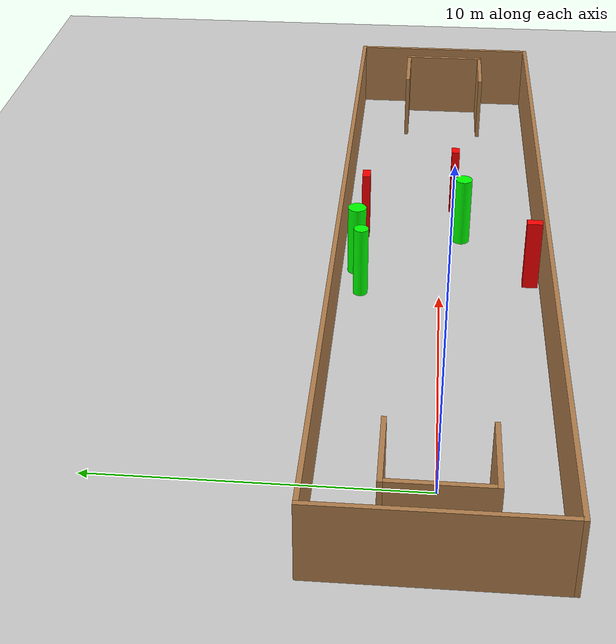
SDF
<sdf version="1.7">
 <world name="default">
  <light name="sun" type="directional">
   <pose>0 0 10 0 -0 0</pose>
   <diffuse>0.8 0.8 0.8 1</diffuse>
   <specular>0.2 0.2 0.2 1</specular>
   <attenuation>
    <range>1000</range>
    <constant>0.9</constant>
    <linear>0.01</linear>
    <quadratic>0.001</quadratic>
   </attenuation>
   <direction>-0.5 0.1 -0.9</direction>
   <spot><inner_angle>0</inner_angle><outer_angle>0</outer_angle><falloff>0</falloff></spot>
  </light>
  <model name="ground_plane">
   <static>1</static>
   <link name="link">
    <collision name="collision">
     <geometry><plane><normal>0 0 1</normal><size>100 100</size></plane></geometry>
     <surface>
      <contact><collide_bitmask>65535</collide_bitmask></contact>
      <friction><ode><mu>100</mu><mu2>50</mu2></ode></friction>
     </surface>
    </collision>
    <visual name="visual">
     <cast_shadows>0</cast_shadows>
     <geometry><plane><normal>0 0 1</normal><size>100 100</size></plane></geometry>
     <material>
      <script><uri>file://media/materials/scripts/gazebo.material</uri><name>Gazebo/Grey</name></script>
     </material>
    </visual>
   </link>
  </model>
  <gravity>0 0 -9.8</gravity>
  <magnetic_field>6e-06 2.3e-05 -4.2e-05</magnetic_field>
  <atmosphere type="adiabatic"/>
  <physics type="ode">
   <max_step_size>0.001</max_step_size>
   <real_time_factor>1</real_time_factor>
   <real_time_update_rate>1000</real_time_update_rate>
  </physics>
  <scene><ambient>0.4 0.4 0.4 1</ambient><background>0.7 0.7 0.7 1</background><shadows>1</shadows></scene>
  <spherical_coordinates>
   <surface_model>EARTH_WGS84</surface_model>
   <latitude_deg>0</latitude_deg>
   <longitude_deg>0</longitude_deg>
   <elevation>0</elevation>
   <heading_deg>0</heading_deg>
  </spherical_coordinates>
  <model name="my_base_walls">
   <link name="Wall_0">
    <collision name="Wall_0_Collision">
     <geometry><box><size>7.15 0.15 2.5</size></box></geometry>
     <pose>0 0 1.25 0 -0 0</pose>
    </collision>
    <visual name="Wall_0_Visual">
     <pose>0 0 1.25 0 -0 0</pose>
     <geometry><box><size>7.15 0.15 2.5</size></box></geometry>
     <material>
      <script><uri>file://media/materials/scripts/gazebo.material</uri><name>Gazebo/Wood</name></script>
      <ambient>1 1 1 1</ambient>
     </material>
     <meta><layer>0</layer></meta>
    </visual>
    <pose>-15 0 0 0 -0 1.5708</pose>
   </link>
   <link name="Wall_10">
    <collision name="Wall_10_Collision">
     <geometry><box><size>2.65 0.15 2.5</size></box></geometry>
     <pose>0 0 1.25 0 -0 0</pose>
    </collision>
    <visual name="Wall_10_Visual">
     <pose>0 0 1.25 0 -0 0</pose>
     <geometry><box><size>2.65 0.15 2.5</size></box></geometry>
     <material>
      <script><uri>file://media/materials/scripts/gazebo.material</uri><name>Gazebo/Wood</name></script>
      <ambient>1 1 1 1</ambient>
     </material>
     <meta><layer>0</layer></meta>
    </visual>
    <pose>-12.75 -1.5 0 0 -0 0</pose>
   </link>
   <link name="Wall_12">
    <collision name="Wall_12_Collision">
     <geometry><box><size>2.65 0.15 2.5</size></box></geometry>
     <pose>0 0 1.25 0 -0 0</pose>
    </collision>
    <visual name="Wall_12_Visual">
     <pose>0 0 1.25 0 -0 0</pose>
     <geometry><box><size>2.65 0.15 2.5</size></box></geometry>
     <material>
      <script><uri>file://media/materials/scripts/gazebo.material</uri><name>Gazebo/Wood</name></script>
      <ambient>1 1 1 1</ambient>
     </material>
     <meta><layer>0</layer></meta>
    </visual>
    <pose>-12.75 1.5 0 0 -0 0</pose>
   </link>
   <link name="Wall_14">
    <collision name="Wall_14_Collision">
     <geometry><box><size>3.15 0.15 2.5</size></box></geometry>
     <pose>0 0 1.25 0 -0 0</pose>
    </collision>
    <visual name="Wall_14_Visual">
     <pose>0 0 1.25 0 -0 0</pose>
     <geometry><box><size>3.15 0.15 2.5</size></box></geometry>
     <material>
      <script><uri>file://media/materials/scripts/gazebo.material</uri><name>Gazebo/Wood</name></script>
      <ambient>1 1 1 1</ambient>
     </material>
     <meta><layer>0</layer></meta>
    </visual>
    <pose>14 0 0 0 -0 -1.5708</pose>
   </link>
   <link name="Wall_15">
    <collision name="Wall_15_Collision">
     <geometry><box><size>2.65 0.15 2.5</size></box></geometry>
     <pose>0 0 1.25 0 -0 0</pose>
    </collision>
    <visual name="Wall_15_Visual">
     <pose>0 0 1.25 0 -0 0</pose>
     <geometry><box><size>2.65 0.15 2.5</size></box></geometry>
     <material>
      <script><uri>file://media/materials/scripts/gazebo.material</uri><name>Gazebo/Wood</name></script>
      <ambient>1 1 1 1</ambient>
     </material>
     <meta><layer>0</layer></meta>
    </visual>
    <pose>12.75 -1.5 0 0 -0 3.14159</pose>
   </link>
   <link name="Wall_17">
    <collision name="Wall_17_Collision">
     <geometry><box><size>2.65 0.15 2.5</size></box></geometry>
     <pose>0 0 1.25 0 -0 0</pose>
    </collision>
    <visual name="Wall_17_Visual">
     <pose>0 0 1.25 0 -0 0</pose>
     <geometry><box><size>2.65 0.15 2.5</size></box></geometry>
     <material>
      <script><uri>file://media/materials/scripts/gazebo.material</uri><name>Gazebo/Wood</name></script>
      <ambient>1 1 1 1</ambient>
     </material>
     <meta><layer>0</layer></meta>
    </visual>
    <pose>12.75 1.5 0 0 -0 3.14159</pose>
   </link>
   <link name="Wall_2">
    <collision name="Wall_2_Collision">
     <geometry><box><size>30.15 0.15 2.5</size></box></geometry>
     <pose>0 0 1.25 0 -0 0</pose>
    </collision>
    <visual name="Wall_2_Visual">
     <pose>0 0 1.25 0 -0 0</pose>
     <geometry><box><size>30.15 0.15 2.5</size></box></geometry>
     <material>
      <script><uri>file://media/materials/scripts/gazebo.material</uri><name>Gazebo/Wood</name></script>
      <ambient>1 1 1 1</ambient>
     </material>
     <meta><layer>0</layer></meta>
    </visual>
    <pose>-0 -3.5 0 0 -0 0</pose>
   </link>
   <link name="Wall_4">
    <collision name="Wall_4_Collision">
     <geometry><box><size>30.15 0.15 2.5</size></box></geometry>
     <pose>0 0 1.25 0 -0 0</pose>
    </collision>
    <visual name="Wall_4_Visual">
     <pose>0 0 1.25 0 -0 0</pose>
     <geometry><box><size>30.15 0.15 2.5</size></box></geometry>
     <material>
      <script><uri>file://media/materials/scripts/gazebo.material</uri><name>Gazebo/Wood</name></script>
      <ambient>1 1 1 1</ambient>
     </material>
     <meta><layer>0</layer></meta>
    </visual>
    <pose>-0 3.5 0 0 -0 0</pose>
   </link>
   <link name="Wall_6">
    <collision name="Wall_6_Collision">
     <geometry><box><size>7.15 0.15 2.5</size></box></geometry>
     <pose>0 0 1.25 0 -0 0</pose>
    </collision>
    <visual name="Wall_6_Visual">
     <pose>0 0 1.25 0 -0 0</pose>
     <geometry><box><size>7.15 0.15 2.5</size></box></geometry>
     <material>
      <script><uri>file://media/materials/scripts/gazebo.material</uri><name>Gazebo/Wood</name></script>
      <ambient>1 1 1 1</ambient>
     </material>
     <meta><layer>0</layer></meta>
    </visual>
    <pose>15 0 0 0 -0 -1.5708</pose>
   </link>
   <link name="Wall_9">
    <collision name="Wall_9_Collision">
     <geometry><box><size>3.15 0.15 2.5</size></box></geometry>
     <pose>0 0 1.25 0 -0 0</pose>
    </collision>
    <visual name="Wall_9_Visual">
     <pose>0 0 1.25 0 -0 0</pose>
     <geometry><box><size>3.15 0.15 2.5</size></box></geometry>
     <material>
      <script><uri>file://media/materials/scripts/gazebo.material</uri><name>Gazebo/Wood</name></script>
      <ambient>1 1 1 1</ambient>
     </material>
     <meta><layer>0</layer></meta>
    </visual>
    <pose>-14 0 0 0 -0 -1.5708</pose>
   </link>
   <static>1</static>
   <pose>11.5 0 0 0 -0 0</pose>
  </model>
  <model name="cylinder1">
   <static>1</static>
   <link name="link">
    <inertial>
     <mass>1</mass>
     <inertia><ixx>0.5</ixx><ixy>0</ixy><ixz>0</ixz><iyy>0.5</iyy><iyz>0</iyz><izz>1</izz></inertia>
    </inertial>
    <collision name="collision">
     <geometry><cylinder><radius>0.3165215681497052</radius><length>2.5</length></cylinder></geometry>
    </collision>
    <visual name="visual">
     <geometry><cylinder><radius>0.3165215681497052</radius><length>2.5</length></cylinder></geometry>
     <material>
      <ambient>0 1 0 1</ambient>
      <diffuse>0 1 0 1</diffuse>
      <specular>0.1 0.1 0.1 1</specular>
      <emissive>0 0 0 0</emissive>
     </material>
    </visual>
   </link>
   <pose>11.58696819896718 2.917563782301701 1.25 0 0 0</pose>
  </model>
  <model name="cylinder2">
   <static>1</static>
   <link name="link">
    <inertial>
     <mass>1</mass>
     <inertia><ixx>0.5</ixx><ixy>0</ixy><ixz>0</ixz><iyy>0.5</iyy><iyz>0</iyz><izz>1</izz></inertia>
    </inertial>
    <collision name="collision">
     <geometry><cylinder><radius>0.2977445455247796</radius><length>2.5</length></cylinder></geometry>
    </collision>
    <visual name="visual">
     <geometry><cylinder><radius>0.2977445455247796</radius><length>2.5</length></cylinder></geometry>
     <material>
      <ambient>0 1 0 1</ambient>
      <diffuse>0 1 0 1</diffuse>
      <specular>0.1 0.1 0.1 1</specular>
      <emissive>0 0 0 0</emissive>
     </material>
    </visual>
   </link>
   <pose>13.986725556084183 -0.7514829462617443 1.25 0 0 0</pose>
  </model>
  <model name="cylinder3">
   <static>1</static>
   <link name="link">
    <inertial>
     <mass>1</mass>
     <inertia><ixx>0.5</ixx><ixy>0</ixy><ixz>0</ixz><iyy>0.5</iyy><iyz>0</iyz><izz>1</izz></inertia>
    </inertial>
    <collision name="collision">
     <geometry><cylinder><radius>0.24839552297189363</radius><length>2.5</length></cylinder></geometry>
    </collision>
    <visual name="visual">
     <geometry><cylinder><radius>0.24839552297189363</radius><length>2.5</length></cylinder></geometry>
     <material>
      <ambient>0 1 0 1</ambient>
      <diffuse>0 1 0 1</diffuse>
      <specular>0.1 0.1 0.1 1</specular>
      <emissive>0 0 0 0</emissive>
     </material>
    </visual>
   </link>
   <pose>10.127625932349563 2.6990177953667187 1.25 0 0 0</pose>
  </model>
  <model name="box1">
   <static>1</static>
   <link name="link">
    <inertial>
     <mass>1</mass>
     <inertia><ixx>0.083</ixx><ixy>0</ixy><ixz>0</ixz><iyy>0.083</iyy><iyz>0</iyz><izz>0.083</izz></inertia>
    </inertial>
    <collision name="collision">
     <geometry><box><size>0.3127788864110344 0.5235712081452067 2.5</size></box></geometry>
    </collision>
    <visual name="visual">
     <geometry><box><size>0.3127788864110344 0.5235712081452067 2.5</size></box></geometry>
     <material>
      <ambient>1 0 0 1</ambient>
      <diffuse>1 0 0 1</diffuse>
      <specular>0.1 0.1 0.1 1</specular>
      <emissive>0 0 0 0</emissive>
     </material>
    </visual>
    <sensor name="my_contact" type="contact">
     <contact><collision>box_collision</collision><topic>__default_topic__</topic></contact>
    </sensor>
   </link>
   <pose>11.036580220572638 -3.0992324856622098 1.25 0 0 0</pose>
  </model>
  <model name="box2">
   <static>1</static>
   <link name="link">
    <inertial>
     <mass>1</mass>
     <inertia><ixx>0.083</ixx><ixy>0</ixy><ixz>0</ixz><iyy>0.083</iyy><iyz>0</iyz><izz>0.083</izz></inertia>
    </inertial>
    <collision name="collision">
     <geometry><box><size>0.5332335804990207 0.28452055130541837 2.5</size></box></geometry>
    </collision>
    <visual name="visual">
     <geometry><box><size>0.5332335804990207 0.28452055130541837 2.5</size></box></geometry>
     <material>
      <ambient>1 0 0 1</ambient>
      <diffuse>1 0 0 1</diffuse>
      <specular>0.1 0.1 0.1 1</specular>
      <emissive>0 0 0 0</emissive>
     </material>
    </visual>
    <sensor name="my_contact" type="contact">
     <contact><collision>box_collision</collision><topic>__default_topic__</topic></contact>
    </sensor>
   </link>
   <pose>14.183642247071083 2.740373611662368 1.25 0 0 0</pose>
  </model>
  <model name="box3">
   <static>1</static>
   <link name="link">
    <inertial>
     <mass>1</mass>
     <inertia><ixx>0.083</ixx><ixy>0</ixy><ixz>0</ixz><iyy>0.083</iyy><iyz>0</iyz><izz>0.083</izz></inertia>
    </inertial>
    <collision name="collision">
     <geometry><box><size>0.41159290213932154 0.28736175627365995 2.5</size></box></geometry>
    </collision>
    <visual name="visual">
     <geometry><box><size>0.41159290213932154 0.28736175627365995 2.5</size></box></geometry>
     <material>
      <ambient>1 0 0 1</ambient>
      <diffuse>1 0 0 1</diffuse>
      <specular>0.1 0.1 0.1 1</specular>
      <emissive>0 0 0 0</emissive>
     </material>
    </visual>
    <sensor name="my_contact" type="contact">
     <contact><collision>box_collision</collision><topic>__default_topic__</topic></contact>
    </sensor>
   </link>
   <pose>16.333876648185033 -0.4666847049462248 1.25 0 0 0</pose>
  </model>
 </world>
</sdf>
